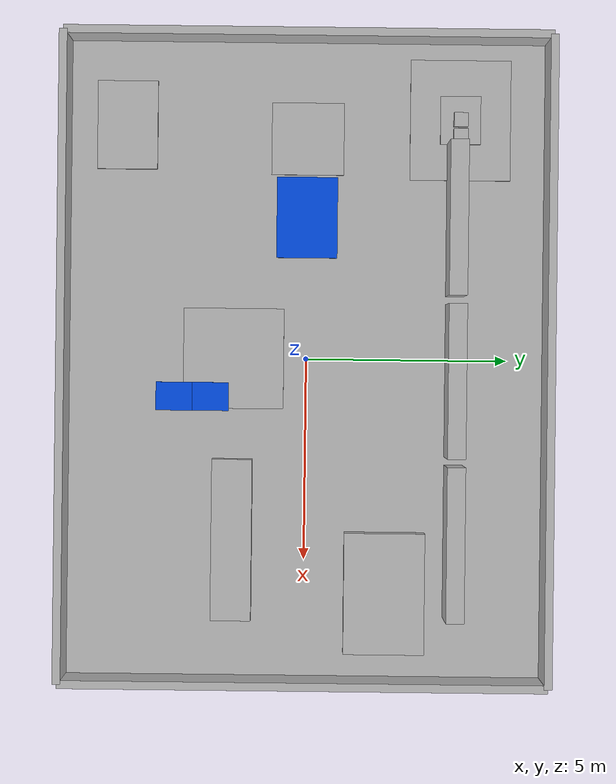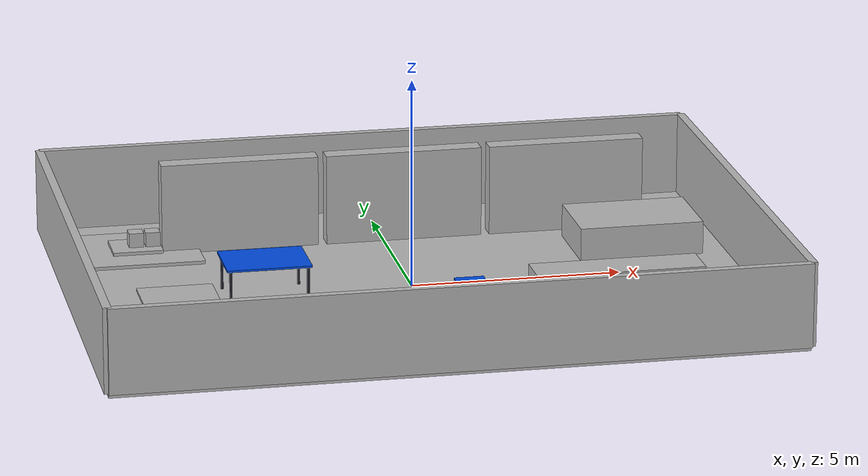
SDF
<?xml version="1.0" ?>
<sdf version="1.6">
  <world name="warehouse_simple">

    <include>
      <uri>model://sun</uri>
    </include>

    <physics type="ode">
      <max_step_size>0.001</max_step_size>
      <real_time_factor>1</real_time_factor>
      <real_time_update_rate>1000</real_time_update_rate>
    </physics>

    <!-- FLOOR                                                  -->
    <model name="warehouse_floor">
      <static>true</static>
      <link name="link">
        <collision name="collision">
          <geometry>
            <box>
              <size>16 12 0.1</size>
            </box>
          </geometry>
        </collision>
        <visual name="visual">
          <geometry>
            <box>
              <size>16 12 0.1</size>
            </box>
          </geometry>
        </visual>
      </link>
      <pose>0 0 -0.05 0 0 0</pose>
    </model>

    <!-- WALLS                                                  -->
    <model name="wall_north">
      <static>true</static>
      <link name="link">
        <collision name="collision"><geometry><box><size>16 0.2 2</size></box></geometry></collision>
        <visual name="visual"><geometry><box><size>16 0.2 2</size></box></geometry></visual>
      </link>
      <pose>0 6 1 0 0 0</pose>
    </model>

    <model name="wall_south">
      <static>true</static>
      <link name="link">
        <collision name="collision"><geometry><box><size>16 0.2 2</size></box></geometry></collision>
        <visual name="visual"><geometry><box><size>16 0.2 2</size></box></geometry></visual>
      </link>
      <pose>0 -6 1 0 0 0</pose>
    </model>

    <model name="wall_east">
      <static>true</static>
      <link name="link">
        <collision name="collision"><geometry><box><size>0.2 12 2</size></box></geometry></collision>
        <visual name="visual"><geometry><box><size>0.2 12 2</size></box></geometry></visual>
      </link>
      <pose>8 0 1 0 0 0</pose>
    </model>

    <model name="wall_west">
      <static>true</static>
      <link name="link">
        <collision name="collision"><geometry><box><size>0.2 12 2</size></box></geometry></collision>
        <visual name="visual"><geometry><box><size>0.2 12 2</size></box></geometry></visual>
      </link>
      <pose>-8 0 1 0 0 0</pose>
    </model>

    <!-- RECEIVING                                              -->
    <model name="receiving_area">
      <static>true</static>
      <link name="link">
        <visual name="visual">
          <geometry><box><size>3.0 2.5 0.08</size></box></geometry>
        </visual>
      </link>
      <pose>-6.0 3.8 0.04 0 0 0</pose>
    </model>

    <!-- STORAGE RACK 1                                         -->
    <model name="storage_rack_1">
      <static>true</static>
      <link name="link">
        <collision name="collision">
          <geometry><box><size>3.8 0.45 2.2</size></box></geometry>
        </collision>
        <visual name="visual">
          <geometry><box><size>3.8 0.45 2.2</size></box></geometry>
        </visual>
      </link>
      <pose>-3.5 3.7 1.1 0 0 0</pose>
    </model>

    <!-- STORAGE RACK 2 -->
    <model name="storage_rack_2">
      <static>true</static>
      <link name="link">
        <collision name="collision">
          <geometry><box><size>3.8 0.45 2.2</size></box></geometry>
        </collision>
        <visual name="visual">
          <geometry><box><size>3.8 0.45 2.2</size></box></geometry>
        </visual>
      </link>
      <pose>0.5 3.7 1.1 0 0 0</pose>
    </model>

    <!-- STORAGE RACK 3 -->
    <model name="storage_rack_3">
      <static>true</static>
      <link name="link">
        <collision name="collision">
          <geometry><box><size>3.8 0.45 2.2</size></box></geometry>
        </collision>
        <visual name="visual">
          <geometry><box><size>3.8 0.45 2.2</size></box></geometry>
        </visual>
      </link>
      <pose>4.5 3.7 1.1 0 0 0</pose>
    </model>

    <!-- PICKING STATION                                        -->
    <model name="picking_station">
      <static>true</static>
      <pose>-3.5 0.0 0 0 0 0</pose>
      <link name="link">
        <collision name="top_col"><pose>0 0 0.875 0 0 0</pose><geometry><box><size>2.0 1.5 0.05</size></box></geometry></collision>
        <visual name="top_vis"><pose>0 0 0.875 0 0 0</pose><geometry><box><size>2.0 1.5 0.05</size></box></geometry><material><ambient>0.0 0.3 0.9 1</ambient><diffuse>0.0 0.3 0.9 1</diffuse></material></visual>
        <collision name="leg0_col"><pose>-0.910 -0.660 0.425 0 0 0</pose><geometry><box><size>0.06 0.06 0.85</size></box></geometry></collision>
        <visual name="leg0_vis"><pose>-0.910 -0.660 0.425 0 0 0</pose><geometry><box><size>0.06 0.06 0.85</size></box></geometry><material><ambient>0.12 0.12 0.15 1</ambient><diffuse>0.12 0.12 0.15 1</diffuse></material></visual>
        <collision name="leg1_col"><pose>-0.910 0.660 0.425 0 0 0</pose><geometry><box><size>0.06 0.06 0.85</size></box></geometry></collision>
        <visual name="leg1_vis"><pose>-0.910 0.660 0.425 0 0 0</pose><geometry><box><size>0.06 0.06 0.85</size></box></geometry><material><ambient>0.12 0.12 0.15 1</ambient><diffuse>0.12 0.12 0.15 1</diffuse></material></visual>
        <collision name="leg2_col"><pose>0.910 -0.660 0.425 0 0 0</pose><geometry><box><size>0.06 0.06 0.85</size></box></geometry></collision>
        <visual name="leg2_vis"><pose>0.910 -0.660 0.425 0 0 0</pose><geometry><box><size>0.06 0.06 0.85</size></box></geometry><material><ambient>0.12 0.12 0.15 1</ambient><diffuse>0.12 0.12 0.15 1</diffuse></material></visual>
        <collision name="leg3_col"><pose>0.910 0.660 0.425 0 0 0</pose><geometry><box><size>0.06 0.06 0.85</size></box></geometry></collision>
        <visual name="leg3_vis"><pose>0.910 0.660 0.425 0 0 0</pose><geometry><box><size>0.06 0.06 0.85</size></box></geometry><material><ambient>0.12 0.12 0.15 1</ambient><diffuse>0.12 0.12 0.15 1</diffuse></material></visual>
      </link>
    </model>

    <!-- UR5e WORKCELL                                          -->
    <model name="ur5e_workcell">
      <static>true</static>
      <link name="base">
        <collision name="collision">
          <geometry><box><size>2.5 2.5 0.12</size></box></geometry>
        </collision>
        <visual name="visual">
          <geometry><box><size>2.5 2.5 0.12</size></box></geometry>
        </visual>
      </link>
      <pose>0 -1.8 0.06 0 0 0</pose>
    </model>

    <!-- HANDOVER TABLE                                         -->

    <!-- BOTTLE HANDOVER TABLE -->
    <model name="table_bottle_handover">
      <static>true</static>
      <pose>0.95 -2.35 0 0 0 1.5708</pose>
      <link name="link">
        <collision name="top_col">
          <pose>0 0 0.7550 0 0 0</pose>
          <geometry>
            <box>
              <size>0.9 0.7 0.05</size>
            </box>
          </geometry>
        </collision>
        <visual name="top_vis">
          <pose>0 0 0.7550 0 0 0</pose>
          <geometry>
            <box>
              <size>0.9 0.7 0.05</size>
            </box>
          </geometry>
          <material>
            <ambient>0.0 0.3 0.9 1</ambient>
            <diffuse>0.0 0.3 0.9 1</diffuse>
          </material>
        </visual>
        <collision name="leg0_col">
          <pose>-0.360 -0.260 0.3650 0 0 0</pose>
          <geometry>
            <box>
              <size>0.06 0.06 0.73</size>
            </box>
          </geometry>
        </collision>
        <visual name="leg0_vis">
          <pose>-0.360 -0.260 0.3650 0 0 0</pose>
          <geometry>
            <box>
              <size>0.06 0.06 0.73</size>
            </box>
          </geometry>
          <material>
            <ambient>0.12 0.12 0.15 1</ambient>
            <diffuse>0.12 0.12 0.15 1</diffuse>
          </material>
        </visual>
        <collision name="leg1_col">
          <pose>-0.360 0.260 0.3650 0 0 0</pose>
          <geometry>
            <box>
              <size>0.06 0.06 0.73</size>
            </box>
          </geometry>
        </collision>
        <visual name="leg1_vis">
          <pose>-0.360 0.260 0.3650 0 0 0</pose>
          <geometry>
            <box>
              <size>0.06 0.06 0.73</size>
            </box>
          </geometry>
          <material>
            <ambient>0.12 0.12 0.15 1</ambient>
            <diffuse>0.12 0.12 0.15 1</diffuse>
          </material>
        </visual>
        <collision name="leg2_col">
          <pose>0.360 -0.260 0.3650 0 0 0</pose>
          <geometry>
            <box>
              <size>0.06 0.06 0.73</size>
            </box>
          </geometry>
        </collision>
        <visual name="leg2_vis">
          <pose>0.360 -0.260 0.3650 0 0 0</pose>
          <geometry>
            <box>
              <size>0.06 0.06 0.73</size>
            </box>
          </geometry>
          <material>
            <ambient>0.12 0.12 0.15 1</ambient>
            <diffuse>0.12 0.12 0.15 1</diffuse>
          </material>
        </visual>
        <collision name="leg3_col">
          <pose>0.360 0.260 0.3650 0 0 0</pose>
          <geometry>
            <box>
              <size>0.06 0.06 0.73</size>
            </box>
          </geometry>
        </collision>
        <visual name="leg3_vis">
          <pose>0.360 0.260 0.3650 0 0 0</pose>
          <geometry>
            <box>
              <size>0.06 0.06 0.73</size>
            </box>
          </geometry>
          <material>
            <ambient>0.12 0.12 0.15 1</ambient>
            <diffuse>0.12 0.12 0.15 1</diffuse>
          </material>
        </visual>
      </link>
    </model>

    <!-- UR5E HANDOVER TABLE -->
    <model name="table_ur5e_handover">
      <static>true</static>
      <pose>0.95 -3.25 0 0 0 1.5708</pose>
      <link name="link">
        <collision name="top_col">
          <pose>0 0 0.7550 0 0 0</pose>
          <geometry>
            <box>
              <size>0.9 0.7 0.05</size>
            </box>
          </geometry>
        </collision>
        <visual name="top_vis">
          <pose>0 0 0.7550 0 0 0</pose>
          <geometry>
            <box>
              <size>0.9 0.7 0.05</size>
            </box>
          </geometry>
          <material>
            <ambient>0.0 0.3 0.9 1</ambient>
            <diffuse>0.0 0.3 0.9 1</diffuse>
          </material>
        </visual>
        <collision name="leg0_col">
          <pose>-0.360 -0.260 0.3650 0 0 0</pose>
          <geometry>
            <box>
              <size>0.06 0.06 0.73</size>
            </box>
          </geometry>
        </collision>
        <visual name="leg0_vis">
          <pose>-0.360 -0.260 0.3650 0 0 0</pose>
          <geometry>
            <box>
              <size>0.06 0.06 0.73</size>
            </box>
          </geometry>
          <material>
            <ambient>0.12 0.12 0.15 1</ambient>
            <diffuse>0.12 0.12 0.15 1</diffuse>
          </material>
        </visual>
        <collision name="leg1_col">
          <pose>-0.360 0.260 0.3650 0 0 0</pose>
          <geometry>
            <box>
              <size>0.06 0.06 0.73</size>
            </box>
          </geometry>
        </collision>
        <visual name="leg1_vis">
          <pose>-0.360 0.260 0.3650 0 0 0</pose>
          <geometry>
            <box>
              <size>0.06 0.06 0.73</size>
            </box>
          </geometry>
          <material>
            <ambient>0.12 0.12 0.15 1</ambient>
            <diffuse>0.12 0.12 0.15 1</diffuse>
          </material>
        </visual>
        <collision name="leg2_col">
          <pose>0.360 -0.260 0.3650 0 0 0</pose>
          <geometry>
            <box>
              <size>0.06 0.06 0.73</size>
            </box>
          </geometry>
        </collision>
        <visual name="leg2_vis">
          <pose>0.360 -0.260 0.3650 0 0 0</pose>
          <geometry>
            <box>
              <size>0.06 0.06 0.73</size>
            </box>
          </geometry>
          <material>
            <ambient>0.12 0.12 0.15 1</ambient>
            <diffuse>0.12 0.12 0.15 1</diffuse>
          </material>
        </visual>
        <collision name="leg3_col">
          <pose>0.360 0.260 0.3650 0 0 0</pose>
          <geometry>
            <box>
              <size>0.06 0.06 0.73</size>
            </box>
          </geometry>
        </collision>
        <visual name="leg3_vis">
          <pose>0.360 0.260 0.3650 0 0 0</pose>
          <geometry>
            <box>
              <size>0.06 0.06 0.73</size>
            </box>
          </geometry>
          <material>
            <ambient>0.12 0.12 0.15 1</ambient>
            <diffuse>0.12 0.12 0.15 1</diffuse>
          </material>
        </visual>
      </link>
    </model>

    <!-- SORTATION CONVEYOR                                     -->
    <model name="sortation_conveyor">
      <static>true</static>
      <link name="link">
        <collision name="collision">
          <geometry><box><size>4.0 1.0 0.8</size></box></geometry>
        </collision>
        <visual name="visual">
          <geometry><box><size>4.0 1.0 0.8</size></box></geometry>
        </visual>
      </link>
      <pose>4.5 -1.8 0.4 0 0 0</pose>
    </model>

    <!-- PACKING / OUTBOUND                                     -->
    <model name="packing_outbound">
      <static>true</static>
      <link name="link">
        <collision name="collision">
          <geometry><box><size>3.0 2.0 0.8</size></box></geometry>
        </collision>
        <visual name="visual">
          <geometry><box><size>3.0 2.0 0.8</size></box></geometry>
        </visual>
      </link>
      <pose>5.8 2.0 0.4 0 0 0</pose>
    </model>

    <!-- CHARGING STATION                                       -->
    <model name="charging_station">
      <static>true</static>
      <link name="link">
        <collision name="collision">
          <geometry><box><size>2.2 1.5 0.15</size></box></geometry>
        </collision>
        <visual name="visual">
          <geometry><box><size>2.2 1.5 0.15</size></box></geometry>
        </visual>
      </link>
      <pose>-5.8 -4.5 0.075 0 0 0</pose>
    </model>

    <!-- TRON1 START PLATFORM                                   -->
    <model name="tron1_start">
      <static>true</static>
      <link name="link">
        <visual name="visual">
          <geometry><box><size>1.8 1.8 0.06</size></box></geometry>
        </visual>
      </link>
      <pose>-5.5 0.0 0.03 0 0 0</pose>
    </model>

    <!-- PALLETS                                                 -->
    <model name="pallet_receiving">
      <static>true</static>
      <link name="link">
        <collision name="collision">
          <geometry><box><size>1.2 1.0 0.12</size></box></geometry>
        </collision>
        <visual name="visual">
          <geometry><box><size>1.2 1.0 0.12</size></box></geometry>
        </visual>
      </link>
      <pose>-6.0 3.8 0.1 0 0 0</pose>
    </model>

    <model name="pallet_outbound">
      <static>true</static>
      <link name="link">
        <collision name="collision">
          <geometry><box><size>1.2 1.0 0.12</size></box></geometry>
        </collision>
        <visual name="visual">
          <geometry><box><size>1.2 1.0 0.12</size></box></geometry>
        </visual>
      </link>
      <pose>6.0 2.0 0.1 0 0 0</pose>
    </model>

    <!-- BASIC BOXES                                             -->
    <model name="box_1">
      <static>true</static>
      <link name="link">
        <collision name="collision">
          <geometry><box><size>0.35 0.35 0.35</size></box></geometry>
        </collision>
        <visual name="visual">
          <geometry><box><size>0.35 0.35 0.35</size></box></geometry>
        </visual>
      </link>
      <pose>-6.0 3.8 0.335 0 0 0</pose>
    </model>

    <model name="box_2">
      <static>true</static>
      <link name="link">
        <collision name="collision">
          <geometry><box><size>0.35 0.35 0.35</size></box></geometry>
        </collision>
        <visual name="visual">
          <geometry><box><size>0.35 0.35 0.35</size></box></geometry>
        </visual>
      </link>
      <pose>-5.6 3.8 0.335 0 0 0</pose>
    </model>

    <model name="box_3">
      <static>true</static>
      <link name="link">
        <collision name="collision">
          <geometry><box><size>0.35 0.35 0.35</size></box></geometry>
        </collision>
        <visual name="visual">
          <geometry><box><size>0.35 0.35 0.35</size></box></geometry>
        </visual>
      </link>
      <pose>5.5 2.0 0.335 0 0 0</pose>
    </model>

  </world>
</sdf>
